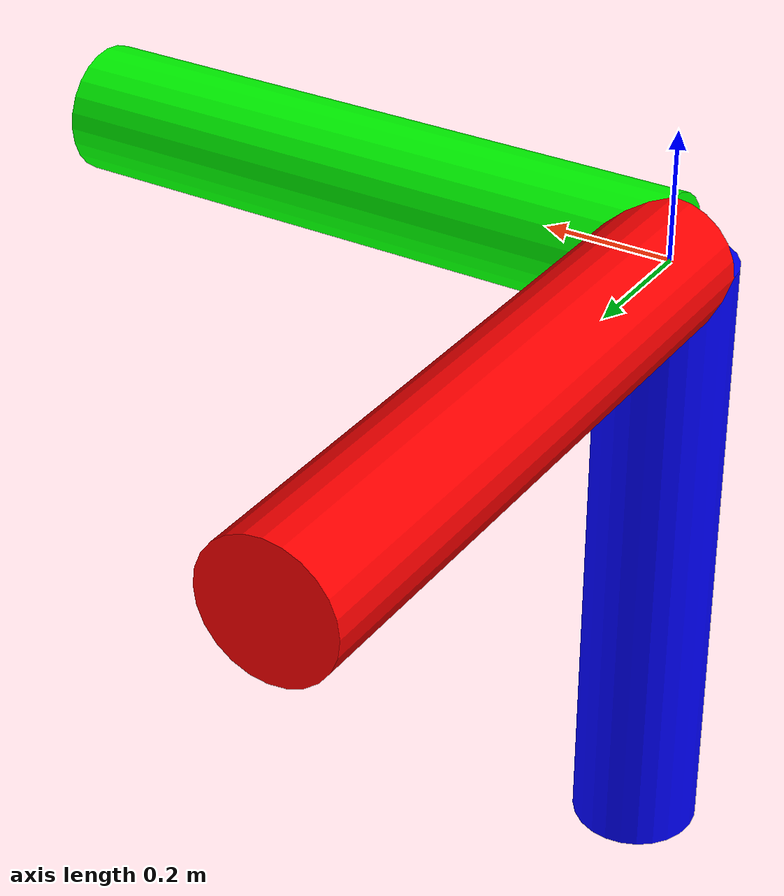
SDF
<?xml version="1.0"?>
<!--
  Development of this module has been funded by the Monterey Bay Aquarium
  Research Institute (MBARI) and the David and Lucile Packard Foundation
-->
<sdf version="1.6">
  <model name="axes">
    <link name="link">
      <pose degrees="true">0 0 0   0 180 -90</pose>
      <visual name="X">
        <pose degrees="true">0.5 0 0  0 90 0</pose>
        <geometry>
          <cylinder>
            <length>1</length>
            <radius>0.1</radius>
          </cylinder>
        </geometry>
        <material>
          <diffuse>1 0 0</diffuse>
        </material>
      </visual>
      <visual name="Y">
        <pose degrees="true">0 0.5 0  90 0 0</pose>
        <geometry>
          <cylinder>
            <length>1</length>
            <radius>0.1</radius>
          </cylinder>
        </geometry>
        <material>
          <diffuse>0 1 0</diffuse>
        </material>
      </visual>
      <visual name="Z">
        <pose degrees="true">0 0 0.5  0 0 0</pose>
        <geometry>
          <cylinder>
            <length>1</length>
            <radius>0.1</radius>
          </cylinder>
        </geometry>
        <material>
          <diffuse>0 0 1</diffuse>
        </material>
      </visual>
    </link>
  </model>
</sdf>
